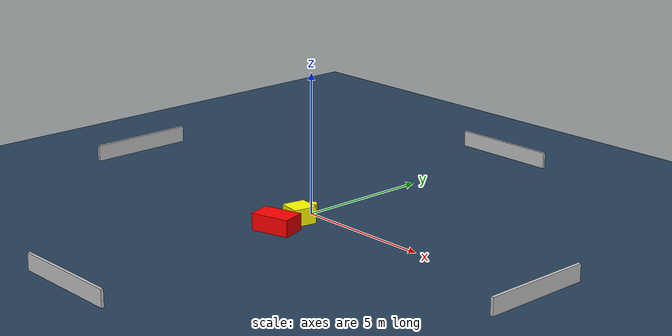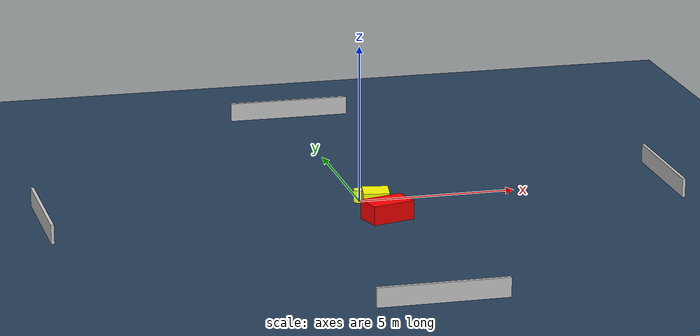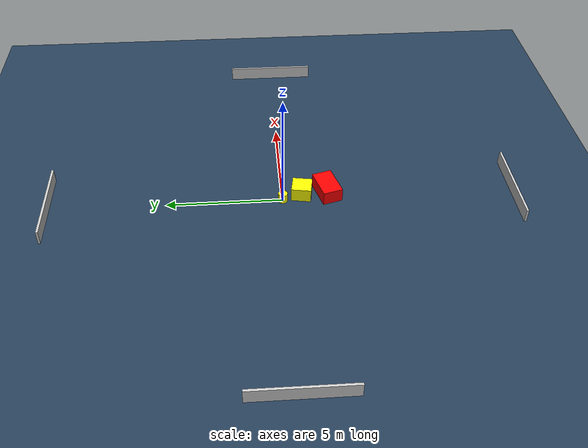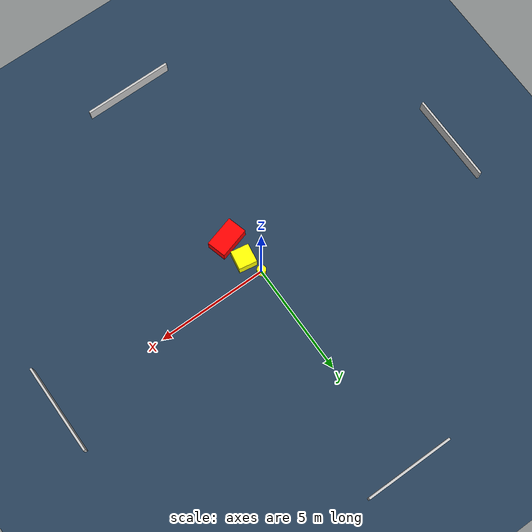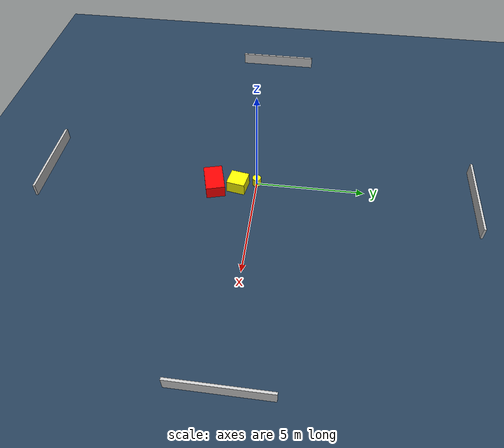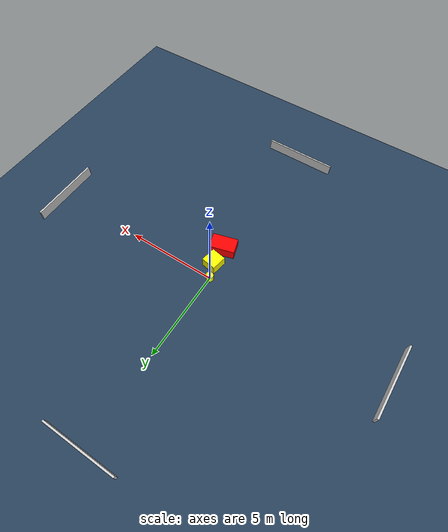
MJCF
<?xml version="1.0" ?>
<mujoco model="generated_environment">
  <option timestep="0.01" integrator="RK4" cone="elliptic"/>
  <default>
    <geom density="1"/>
  </default>
  <asset>
    <texture builtin="gradient" height="3072" name="skybox" rgb1="0.3 0.5 0.7" rgb2="0 0 0" type="skybox" width="512"/>
    <texture builtin="checker" height="300" name="groundplane" rgb1="0.2 0.3 0.4" rgb2="0.1 0.2 0.3" type="2d" width="300"/>
    <material name="groundplane" reflectance="0.2" texrepeat="5 5" texture="groundplane"/>
  </asset>
  <worldbody>
    <light dir="0 0 -1" directional="true" pos="0 0 1.5"/>
    <geom condim="3" friction="0.5 0.005 0.001" material="groundplane" name="floor" pos="0 0 0" size="0 0 0.05" type="plane"/>
    <body name="walls">
      <geom name="wall_1" condim="4" pos="-10.0 0.0 0.3" rgba="0.800000011920929 0.800000011920929 0.800000011920929 1.0" size="0.05 2.0 0.3" type="box"/>
      <geom name="wall_2" condim="4" pos="10.0 0.0 0.3" rgba="0.800000011920929 0.800000011920929 0.800000011920929 1.0" size="0.05 2.0 0.3" type="box"/>
      <geom name="wall_3" condim="4" pos="0.0 -10.0 0.3" rgba="0.800000011920929 0.800000011920929 0.800000011920929 1.0" size="2.0 0.05 0.3" type="box"/>
      <geom name="wall_4" condim="4" pos="0.0 10.0 0.3" rgba="0.800000011920929 0.800000011920929 0.800000011920929 1.0" size="2.0 0.05 0.3" type="box"/>
    </body>
    <body name="robot">
      <joint name="joint_x" type="slide" pos="0 0 0" axis="1 0 0"/>
      <joint name="joint_y" type="slide" pos="0 0 0" axis="0 1 0"/>
      <geom name="robot" type="cylinder" pos="0.0 0.0 0.2" size="0.2 0.2 0.0" mass="5.0" friction="1.0 0.005 0.0001" condim="4" rgba="1.0 1.0 0.0 1.0"/>
    </body>
    <body name="obstacle_1_movable">
      <geom name="obstacle_1_movable" condim="4" pos="0.31210021536745797 -0.8362470309868351 0.3" euler="0 0 350.28865637226386" friction="0.0 0.005 0.001" rgba="1.0 1.0 0.0 1.0" size="0.40768331873251684 0.4224414225699071 0.3" type="box" mass="0.1"/>
      <joint type="free"/>
    </body>
    <body name="obstacle_2_static">
      <geom name="obstacle_2_static" condim="4" pos="0.4029733588858012 -1.9419727867636294 0.3" euler="0 0 285.77929100497744" friction="0.0 0.005 0.001" rgba="1.0 0.0 0.0 1.0" size="0.4323428532568319 0.6975084345498171 0.3" type="box"/>
    </body>
  </worldbody>
  <actuator>
    <motor name="actuator_x" joint="joint_x" gear="1" ctrlrange="-1 1"/>
    <motor name="actuator_y" joint="joint_y" gear="1" ctrlrange="-1 1"/>
  </actuator>
</mujoco>
